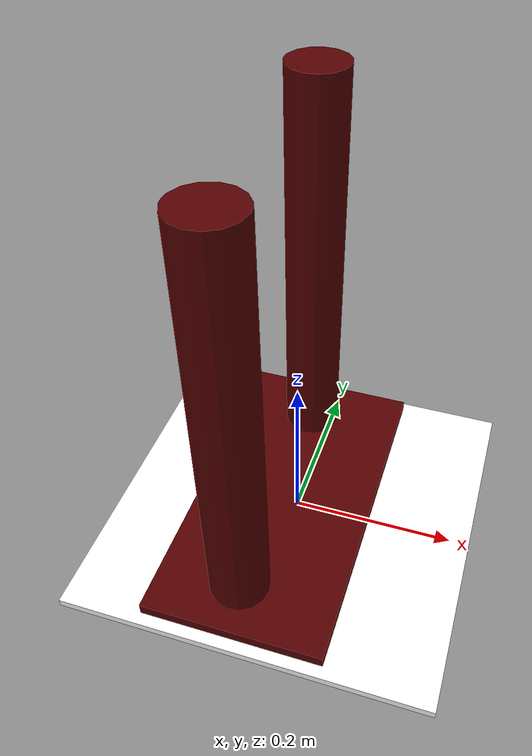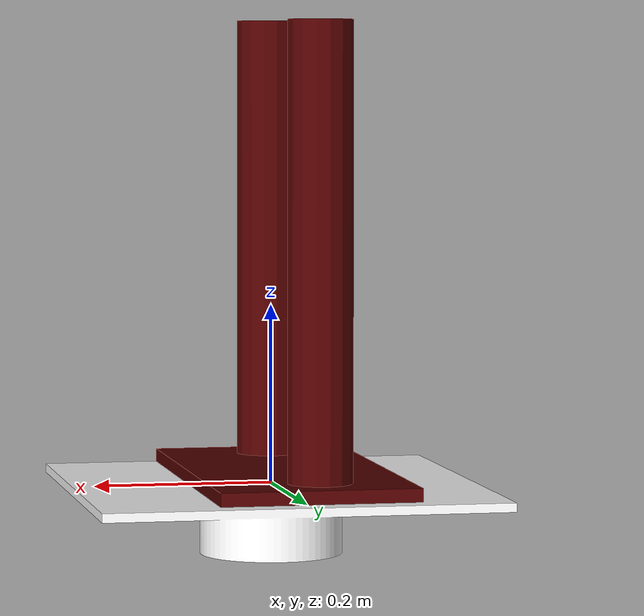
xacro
<?xml version="1.0"?>

<robot name="base" xmlns:xacro="http://ros.org/wiki/xacro">

  <link name="support_link">
    <visual>
      <geometry>
        <mesh filename="package://lr1_description/meshes/support.STL" />
      </geometry>
      <material name="white">
        <color rgba="1 1 1 1"/>
      </material>
    </visual>
    <collision>
      <origin rpy="0 0 0" xyz="0 0 -0.04"/>
      <geometry>
        <box size="0.45 0.45 0.08"/>
      </geometry>
    </collision>
  </link>

  <joint name="support_waist_joint" type="continuous">
    <axis xyz="0 0 1"/>
    <origin rpy="0 0 0" xyz="0 0 0.0165"/>
    <parent link="support_link"/>
    <child link="waist_link"/>
  </joint>

  <link name="waist_link">
    <visual>
      <geometry>
        <mesh filename="package://lr1_description/meshes/waist.STL" />
      </geometry>
      <origin rpy="0 0 0" xyz="0 0 0"/>
      <material name="lyellow">
        <color rgba="0.33 0 0 1"/>
      </material>
    </visual>
    <collision>
      <origin rpy="0 0 0" xyz="0 0 0"/>
      <geometry>
        <mesh filename="package://lr1_description/meshes/waist_L.STL"/>
      </geometry>
    </collision>
  </link>

</robot>
